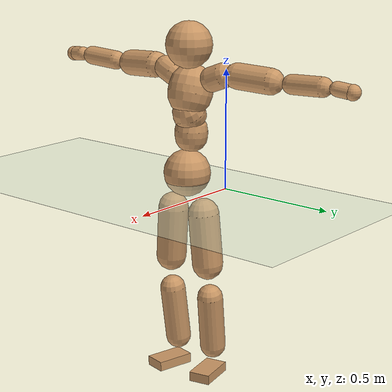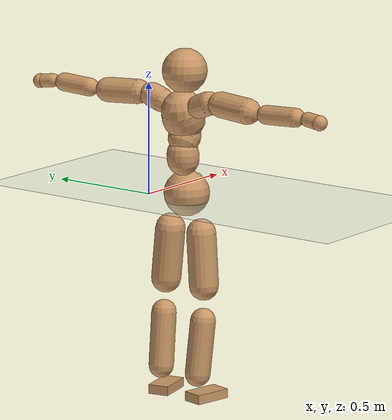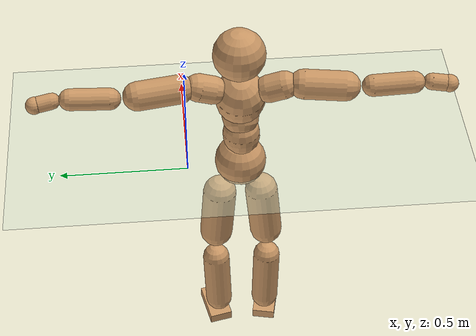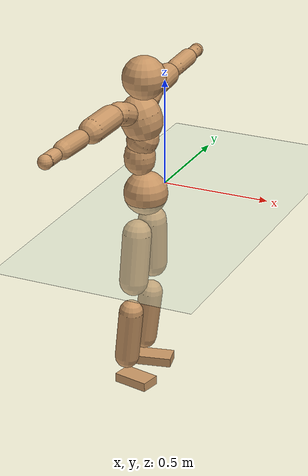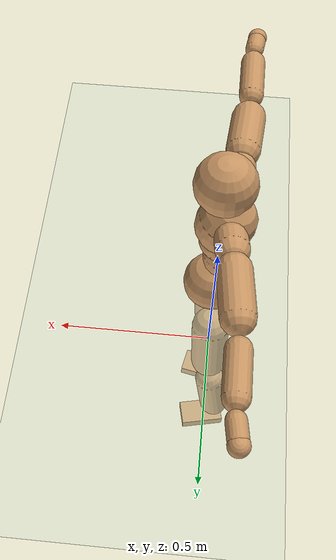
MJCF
<mujoco model="humanoid">
  <compiler coordinate="local"/>
  <default>
    <joint damping="0.0" armature="0.01" stiffness="0.0" limited="true"/>
    <geom conaffinity="1" condim="3" contype="7" margin="0.001" rgba="0.8 0.6 .4 1"/>
  </default>
  <asset>
    <texture type="skybox" builtin="gradient" rgb1=".4 .5 .6" rgb2="0 0 0" width="100" height="100"/>
    <texture builtin="flat" height="1278" mark="cross" markrgb="1 1 1" name="texgeom" random="0.01" rgb1="0.8 0.6 0.4" rgb2="0.8 0.6 0.4" type="cube" width="127"/>
    <texture builtin="checker" height="100" name="texplane" rgb1="0 0 0" rgb2="0.8 0.8 0.8" type="2d" width="100"/>
    <material name="MatPlane" reflectance="0.5" shininess="1" specular="1" texrepeat="60 60" texture="texplane"/>
    <material name="geom" texture="texgeom" texuniform="true"/>
  </asset>
  <worldbody>
    <light cutoff="100" diffuse="1 1 1" dir="-0 0 -1.3" directional="true" exponent="1" pos="0 0 1.3" specular=".1 .1 .1"/>
    <geom conaffinity="1" condim="3" name="floor" pos="0 0 0" rgba="0.8 0.9 0.8 1" size="100 100 .2" type="plane" material="MatPlane"/>
    <body name="Pelvis" pos="0.0006 -0.2079 0.0344">
      <freejoint name="Pelvis"/>
      <geom type="sphere" contype="1" conaffinity="1" density="500" size="0.1008" pos="0.0000 0.0000 0.0000" name="Pelvis"/>
      <body name="L_Hip" pos="-0.0055 0.0784 -0.0928">
        <joint name="L_Hip_x" type="hinge" pos="0 0 0" axis="1 0 0" stiffness="800" damping="80" armature="0.02" range="-180.0000 180.0000"/>
        <joint name="L_Hip_y" type="hinge" pos="0 0 0" axis="0 1 0" stiffness="800" damping="80" armature="0.02" range="-180.0000 180.0000"/>
        <joint name="L_Hip_z" type="hinge" pos="0 0 0" axis="0 0 1" stiffness="800" damping="80" armature="0.02" range="-180.0000 180.0000"/>
        <geom type="capsule" contype="1" conaffinity="1" density="500" fromto="-0.0024 0.0058 -0.0751 -0.0096 0.0232 -0.3004" size="0.0664" name="L_Hip"/>
        <body name="L_Knee" pos="-0.012 0.029 -0.3755">
          <joint name="L_Knee_x" type="hinge" pos="0 0 0" axis="1 0 0" stiffness="800" damping="80" armature="0.02" range="-180.0000 180.0000"/>
          <joint name="L_Knee_y" type="hinge" pos="0 0 0" axis="0 1 0" stiffness="800" damping="80" armature="0.02" range="-180.0000 180.0000"/>
          <joint name="L_Knee_z" type="hinge" pos="0 0 0" axis="0 0 1" stiffness="800" damping="80" armature="0.02" range="-180.0000 180.0000"/>
          <geom type="capsule" contype="1" conaffinity="1" density="500" fromto="-0.0095 -0.0022 -0.0792 -0.0382 -0.0088 -0.3166" size="0.0556" name="L_Knee"/>
          <body name="L_Ankle" pos="-0.0477 -0.011 -0.3958">
            <joint name="L_Ankle_x" type="hinge" pos="0 0 0" axis="1 0 0" stiffness="800" damping="80" armature="0.02" range="-180.0000 180.0000"/>
            <joint name="L_Ankle_y" type="hinge" pos="0 0 0" axis="0 1 0" stiffness="800" damping="80" armature="0.02" range="-180.0000 180.0000"/>
            <joint name="L_Ankle_z" type="hinge" pos="0 0 0" axis="0 0 1" stiffness="800" damping="80" armature="0.02" range="-180.0000 180.0000"/>
            <geom type="box" contype="1" conaffinity="1" density="500" pos="0.0575 0.0124 -0.0279" size="0.0826 0.0468 0.0208" quat="0.9943 0.0000 0.0000 0.1065" name="L_Ankle"/>
            <body name="L_Toe" pos="0.1149 0.0249 -0.0558">
              <joint name="L_Toe_x" type="hinge" pos="0 0 0" axis="1 0 0" stiffness="500" damping="50" armature="0.02" range="-180.0000 180.0000"/>
              <joint name="L_Toe_y" type="hinge" pos="0 0 0" axis="0 1 0" stiffness="500" damping="50" armature="0.02" range="-180.0000 180.0000"/>
              <joint name="L_Toe_z" type="hinge" pos="0 0 0" axis="0 0 1" stiffness="500" damping="50" armature="0.02" range="-180.0000 180.0000"/>
              <geom type="box" contype="1" conaffinity="1" density="500" pos="0.0000 0.0000 0.0276" size="0.001 0.0024 0.001" quat="0.9936 0.0000 0.0000 0.1128" name="L_Toe"/>
            </body>
          </body>
        </body>
      </body>
      <body name="R_Hip" pos="-0.0022 -0.0762 -0.0926">
        <joint name="R_Hip_x" type="hinge" pos="0 0 0" axis="1 0 0" stiffness="800" damping="80" armature="0.02" range="-180.0000 180.0000"/>
        <joint name="R_Hip_y" type="hinge" pos="0 0 0" axis="0 1 0" stiffness="800" damping="80" armature="0.02" range="-180.0000 180.0000"/>
        <joint name="R_Hip_z" type="hinge" pos="0 0 0" axis="0 0 1" stiffness="800" damping="80" armature="0.02" range="-180.0000 180.0000"/>
        <geom type="capsule" contype="1" conaffinity="1" density="500" fromto="-0.0028 -0.0071 -0.0763 -0.0113 -0.0285 -0.3052" size="0.0656" name="R_Hip"/>
        <body name="R_Knee" pos="-0.0141 -0.0356 -0.3815">
          <joint name="R_Knee_x" type="hinge" pos="0 0 0" axis="1 0 0" stiffness="800" damping="80" armature="0.02" range="-180.0000 180.0000"/>
          <joint name="R_Knee_y" type="hinge" pos="0 0 0" axis="0 1 0" stiffness="800" damping="80" armature="0.02" range="-180.0000 180.0000"/>
          <joint name="R_Knee_z" type="hinge" pos="0 0 0" axis="0 0 1" stiffness="800" damping="80" armature="0.02" range="-180.0000 180.0000"/>
          <geom type="capsule" contype="1" conaffinity="1" density="500" fromto="-0.0091 0.0028 -0.0794 -0.0365 0.0111 -0.3175" size="0.0557" name="R_Knee"/>
          <body name="R_Ankle" pos="-0.0457 0.0139 -0.3969">
            <joint name="R_Ankle_x" type="hinge" pos="0 0 0" axis="1 0 0" stiffness="800" damping="80" armature="0.02" range="-180.0000 180.0000"/>
            <joint name="R_Ankle_y" type="hinge" pos="0 0 0" axis="0 1 0" stiffness="800" damping="80" armature="0.02" range="-180.0000 180.0000"/>
            <joint name="R_Ankle_z" type="hinge" pos="0 0 0" axis="0 0 1" stiffness="800" damping="80" armature="0.02" range="-180.0000 180.0000"/>
            <geom type="box" contype="1" conaffinity="1" density="500" pos="0.0594 -0.0126 -0.0244" size="0.0836 0.0465 0.0209" quat="0.9945 0.0000 0.0000 -0.1045" name="R_Ankle"/>
            <body name="R_Toe" pos="0.1188 -0.0252 -0.0487">
              <joint name="R_Toe_x" type="hinge" pos="0 0 0" axis="1 0 0" stiffness="500" damping="50" armature="0.02" range="-180.0000 180.0000"/>
              <joint name="R_Toe_y" type="hinge" pos="0 0 0" axis="0 1 0" stiffness="500" damping="50" armature="0.02" range="-180.0000 180.0000"/>
              <joint name="R_Toe_z" type="hinge" pos="0 0 0" axis="0 0 1" stiffness="500" damping="50" armature="0.02" range="-180.0000 180.0000"/>
              <geom type="box" contype="1" conaffinity="1" density="500" pos="0.0000 0.0000 0.0256" size="0.0009 0.0023 0.0011" quat="0.9955 0.0000 0.0000 -0.0949" name="R_Toe"/>
            </body>
          </body>
        </body>
      </body>
      <body name="Torso" pos="-0.0268 -0.0022 0.1064">
        <joint name="Torso_x" type="hinge" pos="0 0 0" axis="1 0 0" stiffness="1000" damping="100" armature="0.02" range="-180.0000 180.0000"/>
        <joint name="Torso_y" type="hinge" pos="0 0 0" axis="0 1 0" stiffness="1000" damping="100" armature="0.02" range="-180.0000 180.0000"/>
        <joint name="Torso_z" type="hinge" pos="0 0 0" axis="0 0 1" stiffness="1000" damping="100" armature="0.02" range="-180.0000 180.0000"/>
        <geom type="capsule" contype="1" conaffinity="1" density="500" fromto="-0.0017 0.0015 0.0731 -0.0011 0.0010 0.0487" size="0.070866" name="Torso"/>
        <body name="Spine" pos="-0.0028 0.0025 0.1218">
          <joint name="Spine_x" type="hinge" pos="0 0 0" axis="1 0 0" stiffness="1000" damping="100" armature="0.02" range="-180.0000 180.0000"/>
          <joint name="Spine_y" type="hinge" pos="0 0 0" axis="0 1 0" stiffness="1000" damping="100" armature="0.02" range="-180.0000 180.0000"/>
          <joint name="Spine_z" type="hinge" pos="0 0 0" axis="0 0 1" stiffness="1000" damping="100" armature="0.02" range="-180.0000 180.0000"/>
          <geom type="capsule" contype="1" conaffinity="1" density="500" fromto="0.0186 0.0013 0.0289 0.0124 0.0008 0.0193" size="0.071331" name="Spine"/>
          <body name="Chest" pos="0.0309 0.0021 0.0482">
            <joint name="Chest_x" type="hinge" pos="0 0 0" axis="1 0 0" stiffness="1000" damping="100" armature="0.02" range="-180.0000 180.0000"/>
            <joint name="Chest_y" type="hinge" pos="0 0 0" axis="0 1 0" stiffness="1000" damping="100" armature="0.02" range="-180.0000 180.0000"/>
            <joint name="Chest_z" type="hinge" pos="0 0 0" axis="0 0 1" stiffness="1000" damping="100" armature="0.02" range="-180.0000 180.0000"/>
            <geom type="capsule" contype="1" conaffinity="1" density="500" fromto="-0.0274 -0.0002 0.0904 -0.0183 -0.0001 0.0603" size="0.09486" name="Chest"/>
            <body name="Neck" pos="-0.0567 0.0003 0.2103">
              <joint name="Neck_x" type="hinge" pos="0 0 0" axis="1 0 0" stiffness="500" damping="50" armature="0.02" range="-180.0000 180.0000"/>
              <joint name="Neck_y" type="hinge" pos="0 0 0" axis="0 1 0" stiffness="500" damping="50" armature="0.02" range="-180.0000 180.0000"/>
              <joint name="Neck_z" type="hinge" pos="0 0 0" axis="0 0 1" stiffness="500" damping="50" armature="0.02" range="-180.0000 180.0000"/>
              <geom type="capsule" contype="1" conaffinity="1" density="500" fromto="0.0094 0.0005 0.0112 0.0377 0.0020 0.0447" size="0.03906" name="Neck"/>
              <body name="Head" pos="0.0471 0.0025 0.0558">
                <joint name="Head_x" type="hinge" pos="0 0 0" axis="1 0 0" stiffness="500" damping="50" armature="0.02" range="-180.0000 180.0000"/>
                <joint name="Head_y" type="hinge" pos="0 0 0" axis="0 1 0" stiffness="500" damping="50" armature="0.02" range="-180.0000 180.0000"/>
                <joint name="Head_z" type="hinge" pos="0 0 0" axis="0 0 1" stiffness="500" damping="50" armature="0.02" range="-180.0000 180.0000"/>
                <geom type="sphere" contype="1" conaffinity="1" density="500" size="0.0988" pos="0.0000 0.0000 0.0000" name="Head"/>
              </body>
            </body>
            <body name="L_Thorax" pos="-0.0372 0.0832 0.1223">
              <joint name="L_Thorax_x" type="hinge" pos="0 0 0" axis="1 0 0" stiffness="500" damping="50" armature="0.02" range="-180.0000 180.0000"/>
              <joint name="L_Thorax_y" type="hinge" pos="0 0 0" axis="0 1 0" stiffness="500" damping="50" armature="0.02" range="-180.0000 180.0000"/>
              <joint name="L_Thorax_z" type="hinge" pos="0 0 0" axis="0 0 1" stiffness="500" damping="50" armature="0.02" range="-180.0000 180.0000"/>
              <geom type="capsule" contype="1" conaffinity="1" density="500" fromto="-0.0020 0.0180 0.0069 -0.0080 0.0720 0.0278" size="0.0532" name="L_Thorax"/>
              <body name="L_Shoulder" pos="-0.0101 0.09 0.0347">
                <joint name="L_Shoulder_x" type="hinge" pos="0 0 0" axis="1 0 0" stiffness="500" damping="50" armature="0.02" range="-720.0000 720.0000"/>
                <joint name="L_Shoulder_y" type="hinge" pos="0 0 0" axis="0 1 0" stiffness="500" damping="50" armature="0.02" range="-720.0000 720.0000"/>
                <joint name="L_Shoulder_z" type="hinge" pos="0 0 0" axis="0 0 1" stiffness="500" damping="50" armature="0.02" range="-720.0000 720.0000"/>
                <geom type="capsule" contype="1" conaffinity="1" density="500" fromto="-0.0058 0.0512 -0.0023 -0.0232 0.2048 -0.0090" size="0.0546" name="L_Shoulder"/>
                <body name="L_Elbow" pos="-0.029 0.256 -0.0113">
                  <joint name="L_Elbow_x" type="hinge" pos="0 0 0" axis="1 0 0" stiffness="500" damping="50" armature="0.02" range="-720.0000 720.0000"/>
                  <joint name="L_Elbow_y" type="hinge" pos="0 0 0" axis="0 1 0" stiffness="500" damping="50" armature="0.02" range="-720.0000 720.0000"/>
                  <joint name="L_Elbow_z" type="hinge" pos="0 0 0" axis="0 0 1" stiffness="500" damping="50" armature="0.02" range="-720.0000 720.0000"/>
                  <geom type="capsule" contype="1" conaffinity="1" density="500" fromto="0.0002 0.0481 0.0021 0.0008 0.1924 0.0083" size="0.0407" name="L_Elbow"/>
                  <body name="L_Wrist" pos="0.001 0.2405 0.0103">
                    <joint name="L_Wrist_x" type="hinge" pos="0 0 0" axis="1 0 0" stiffness="300" damping="30" armature="0.02" range="-180.0000 180.0000"/>
                    <joint name="L_Wrist_y" type="hinge" pos="0 0 0" axis="0 1 0" stiffness="300" damping="30" armature="0.02" range="-180.0000 180.0000"/>
                    <joint name="L_Wrist_z" type="hinge" pos="0 0 0" axis="0 0 1" stiffness="300" damping="30" armature="0.02" range="-180.0000 180.0000"/>
                    <geom type="capsule" contype="1" conaffinity="1" density="500" fromto="-0.0026 0.0159 -0.0019 -0.0105 0.0637 -0.0077" size="0.0304" name="L_Wrist"/>
                    <body name="L_Hand" pos="-0.0131 0.0797 -0.0096">
                      <joint name="L_Hand_x" type="hinge" pos="0 0 0" axis="1 0 0" stiffness="300" damping="30" armature="0.02" range="-180.0000 180.0000"/>
                      <joint name="L_Hand_y" type="hinge" pos="0 0 0" axis="0 1 0" stiffness="300" damping="30" armature="0.02" range="-180.0000 180.0000"/>
                      <joint name="L_Hand_z" type="hinge" pos="0 0 0" axis="0 0 1" stiffness="300" damping="30" armature="0.02" range="-180.0000 180.0000"/>
                      <geom type="sphere" contype="1" conaffinity="1" density="500" size="0.0322" pos="0.0000 0.0000 0.0000" name="L_Hand"/>
                    </body>
                  </body>
                </body>
              </body>
            </body>
            <body name="R_Thorax" pos="-0.0432 -0.0844 0.1195">
              <joint name="R_Thorax_x" type="hinge" pos="0 0 0" axis="1 0 0" stiffness="500" damping="50" armature="0.02" range="-180.0000 180.0000"/>
              <joint name="R_Thorax_y" type="hinge" pos="0 0 0" axis="0 1 0" stiffness="500" damping="50" armature="0.02" range="-180.0000 180.0000"/>
              <joint name="R_Thorax_z" type="hinge" pos="0 0 0" axis="0 0 1" stiffness="500" damping="50" armature="0.02" range="-180.0000 180.0000"/>
              <geom type="capsule" contype="1" conaffinity="1" density="500" fromto="-0.0026 -0.0190 0.0073 -0.0104 -0.0761 0.0293" size="0.0524" name="R_Thorax"/>
              <body name="R_Shoulder" pos="-0.0129 -0.0951 0.0366">
                <joint name="R_Shoulder_x" type="hinge" pos="0 0 0" axis="1 0 0" stiffness="500" damping="50" armature="0.02" range="-720.0000 720.0000"/>
                <joint name="R_Shoulder_y" type="hinge" pos="0 0 0" axis="0 1 0" stiffness="500" damping="50" armature="0.02" range="-720.0000 720.0000"/>
                <joint name="R_Shoulder_z" type="hinge" pos="0 0 0" axis="0 0 1" stiffness="500" damping="50" armature="0.02" range="-720.0000 720.0000"/>
                <geom type="capsule" contype="1" conaffinity="1" density="500" fromto="-0.0044 -0.0508 -0.0029 -0.0177 -0.2032 -0.0118" size="0.0563" name="R_Shoulder"/>
                <body name="R_Elbow" pos="-0.0221 -0.254 -0.0147">
                  <joint name="R_Elbow_x" type="hinge" pos="0 0 0" axis="1 0 0" stiffness="500" damping="50" armature="0.02" range="-720.0000 720.0000"/>
                  <joint name="R_Elbow_y" type="hinge" pos="0 0 0" axis="0 1 0" stiffness="500" damping="50" armature="0.02" range="-720.0000 720.0000"/>
                  <joint name="R_Elbow_z" type="hinge" pos="0 0 0" axis="0 0 1" stiffness="500" damping="50" armature="0.02" range="-720.0000 720.0000"/>
                  <geom type="capsule" contype="1" conaffinity="1" density="500" fromto="-0.0004 -0.0501 0.0022 -0.0016 -0.2004 0.0087" size="0.0412" name="R_Elbow"/>
                  <body name="R_Wrist" pos="-0.002 -0.2505 0.0109">
                    <joint name="R_Wrist_x" type="hinge" pos="0 0 0" axis="1 0 0" stiffness="300" damping="30" armature="0.02" range="-180.0000 180.0000"/>
                    <joint name="R_Wrist_y" type="hinge" pos="0 0 0" axis="0 1 0" stiffness="300" damping="30" armature="0.02" range="-180.0000 180.0000"/>
                    <joint name="R_Wrist_z" type="hinge" pos="0 0 0" axis="0 0 1" stiffness="300" damping="30" armature="0.02" range="-180.0000 180.0000"/>
                    <geom type="capsule" contype="1" conaffinity="1" density="500" fromto="-0.0021 -0.0163 -0.0015 -0.0086 -0.0653 -0.0059" size="0.0315" name="R_Wrist"/>
                    <body name="R_Hand" pos="-0.0107 -0.0816 -0.0073">
                      <joint name="R_Hand_x" type="hinge" pos="0 0 0" axis="1 0 0" stiffness="300" damping="30" armature="0.02" range="-180.0000 180.0000"/>
                      <joint name="R_Hand_y" type="hinge" pos="0 0 0" axis="0 1 0" stiffness="300" damping="30" armature="0.02" range="-180.0000 180.0000"/>
                      <joint name="R_Hand_z" type="hinge" pos="0 0 0" axis="0 0 1" stiffness="300" damping="30" armature="0.02" range="-180.0000 180.0000"/>
                      <geom type="sphere" contype="1" conaffinity="1" density="500" size="0.0329" pos="0.0000 0.0000 0.0000" name="R_Hand"/>
                    </body>
                  </body>
                </body>
              </body>
            </body>
          </body>
        </body>
      </body>
    </body>
  </worldbody>
  <actuator>
    <motor name="L_Hip_x" joint="L_Hip_x" gear="500"/>
    <motor name="L_Hip_y" joint="L_Hip_y" gear="500"/>
    <motor name="L_Hip_z" joint="L_Hip_z" gear="500"/>
    <motor name="L_Knee_x" joint="L_Knee_x" gear="500"/>
    <motor name="L_Knee_y" joint="L_Knee_y" gear="500"/>
    <motor name="L_Knee_z" joint="L_Knee_z" gear="500"/>
    <motor name="L_Ankle_x" joint="L_Ankle_x" gear="500"/>
    <motor name="L_Ankle_y" joint="L_Ankle_y" gear="500"/>
    <motor name="L_Ankle_z" joint="L_Ankle_z" gear="500"/>
    <motor name="L_Toe_x" joint="L_Toe_x" gear="500"/>
    <motor name="L_Toe_y" joint="L_Toe_y" gear="500"/>
    <motor name="L_Toe_z" joint="L_Toe_z" gear="500"/>
    <motor name="R_Hip_x" joint="R_Hip_x" gear="500"/>
    <motor name="R_Hip_y" joint="R_Hip_y" gear="500"/>
    <motor name="R_Hip_z" joint="R_Hip_z" gear="500"/>
    <motor name="R_Knee_x" joint="R_Knee_x" gear="500"/>
    <motor name="R_Knee_y" joint="R_Knee_y" gear="500"/>
    <motor name="R_Knee_z" joint="R_Knee_z" gear="500"/>
    <motor name="R_Ankle_x" joint="R_Ankle_x" gear="500"/>
    <motor name="R_Ankle_y" joint="R_Ankle_y" gear="500"/>
    <motor name="R_Ankle_z" joint="R_Ankle_z" gear="500"/>
    <motor name="R_Toe_x" joint="R_Toe_x" gear="500"/>
    <motor name="R_Toe_y" joint="R_Toe_y" gear="500"/>
    <motor name="R_Toe_z" joint="R_Toe_z" gear="500"/>
    <motor name="Torso_x" joint="Torso_x" gear="500"/>
    <motor name="Torso_y" joint="Torso_y" gear="500"/>
    <motor name="Torso_z" joint="Torso_z" gear="500"/>
    <motor name="Spine_x" joint="Spine_x" gear="500"/>
    <motor name="Spine_y" joint="Spine_y" gear="500"/>
    <motor name="Spine_z" joint="Spine_z" gear="500"/>
    <motor name="Chest_x" joint="Chest_x" gear="500"/>
    <motor name="Chest_y" joint="Chest_y" gear="500"/>
    <motor name="Chest_z" joint="Chest_z" gear="500"/>
    <motor name="Neck_x" joint="Neck_x" gear="500"/>
    <motor name="Neck_y" joint="Neck_y" gear="500"/>
    <motor name="Neck_z" joint="Neck_z" gear="500"/>
    <motor name="Head_x" joint="Head_x" gear="500"/>
    <motor name="Head_y" joint="Head_y" gear="500"/>
    <motor name="Head_z" joint="Head_z" gear="500"/>
    <motor name="L_Thorax_x" joint="L_Thorax_x" gear="500"/>
    <motor name="L_Thorax_y" joint="L_Thorax_y" gear="500"/>
    <motor name="L_Thorax_z" joint="L_Thorax_z" gear="500"/>
    <motor name="L_Shoulder_x" joint="L_Shoulder_x" gear="500"/>
    <motor name="L_Shoulder_y" joint="L_Shoulder_y" gear="500"/>
    <motor name="L_Shoulder_z" joint="L_Shoulder_z" gear="500"/>
    <motor name="L_Elbow_x" joint="L_Elbow_x" gear="500"/>
    <motor name="L_Elbow_y" joint="L_Elbow_y" gear="500"/>
    <motor name="L_Elbow_z" joint="L_Elbow_z" gear="500"/>
    <motor name="L_Wrist_x" joint="L_Wrist_x" gear="500"/>
    <motor name="L_Wrist_y" joint="L_Wrist_y" gear="500"/>
    <motor name="L_Wrist_z" joint="L_Wrist_z" gear="500"/>
    <motor name="L_Hand_x" joint="L_Hand_x" gear="500"/>
    <motor name="L_Hand_y" joint="L_Hand_y" gear="500"/>
    <motor name="L_Hand_z" joint="L_Hand_z" gear="500"/>
    <motor name="R_Thorax_x" joint="R_Thorax_x" gear="500"/>
    <motor name="R_Thorax_y" joint="R_Thorax_y" gear="500"/>
    <motor name="R_Thorax_z" joint="R_Thorax_z" gear="500"/>
    <motor name="R_Shoulder_x" joint="R_Shoulder_x" gear="500"/>
    <motor name="R_Shoulder_y" joint="R_Shoulder_y" gear="500"/>
    <motor name="R_Shoulder_z" joint="R_Shoulder_z" gear="500"/>
    <motor name="R_Elbow_x" joint="R_Elbow_x" gear="500"/>
    <motor name="R_Elbow_y" joint="R_Elbow_y" gear="500"/>
    <motor name="R_Elbow_z" joint="R_Elbow_z" gear="500"/>
    <motor name="R_Wrist_x" joint="R_Wrist_x" gear="500"/>
    <motor name="R_Wrist_y" joint="R_Wrist_y" gear="500"/>
    <motor name="R_Wrist_z" joint="R_Wrist_z" gear="500"/>
    <motor name="R_Hand_x" joint="R_Hand_x" gear="500"/>
    <motor name="R_Hand_y" joint="R_Hand_y" gear="500"/>
    <motor name="R_Hand_z" joint="R_Hand_z" gear="500"/>
  </actuator>
  <contact>
    <exclude body1="Torso" body2="Chest"/>
    <exclude body1="Head" body2="Chest"/>
    <exclude body1="R_Knee" body2="R_Toe"/>
    <exclude body1="R_Knee" body2="L_Ankle"/>
    <exclude body1="R_Knee" body2="L_Toe"/>
    <exclude body1="L_Knee" body2="L_Toe"/>
    <exclude body1="L_Knee" body2="R_Ankle"/>
    <exclude body1="L_Knee" body2="R_Toe"/>
    <exclude body1="L_Shoulder" body2="Chest"/>
    <exclude body1="R_Shoulder" body2="Chest"/>
  </contact>
  <sensor/>
  <size njmax="700" nconmax="700"/>
</mujoco>
